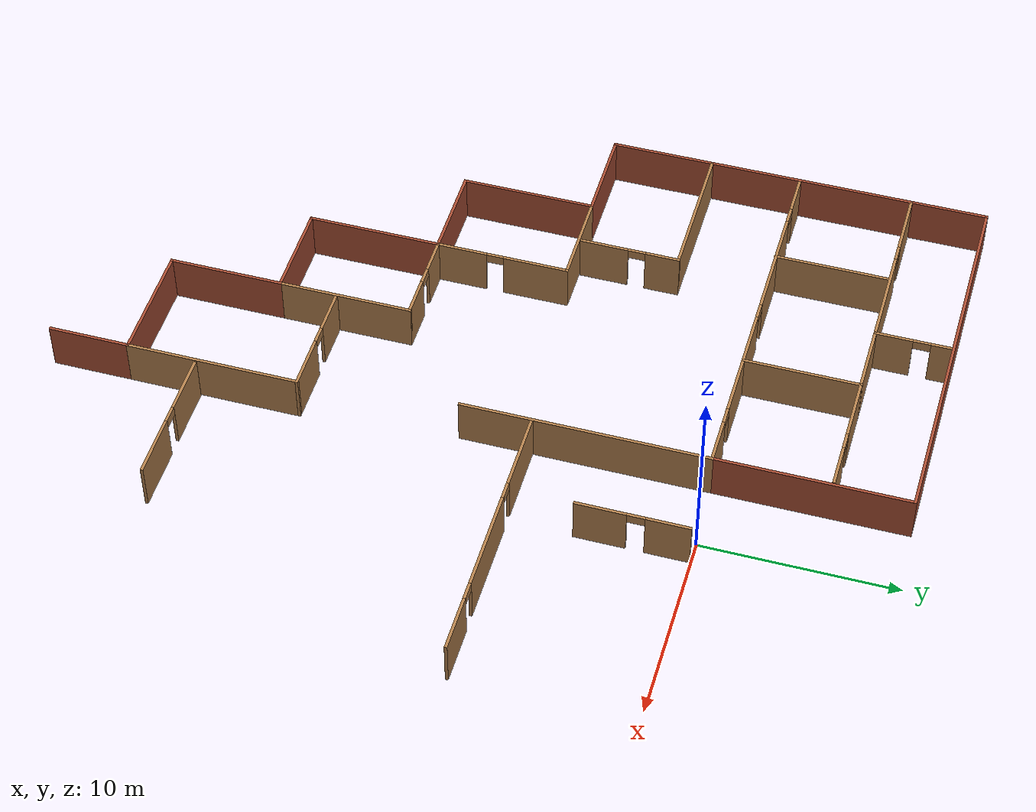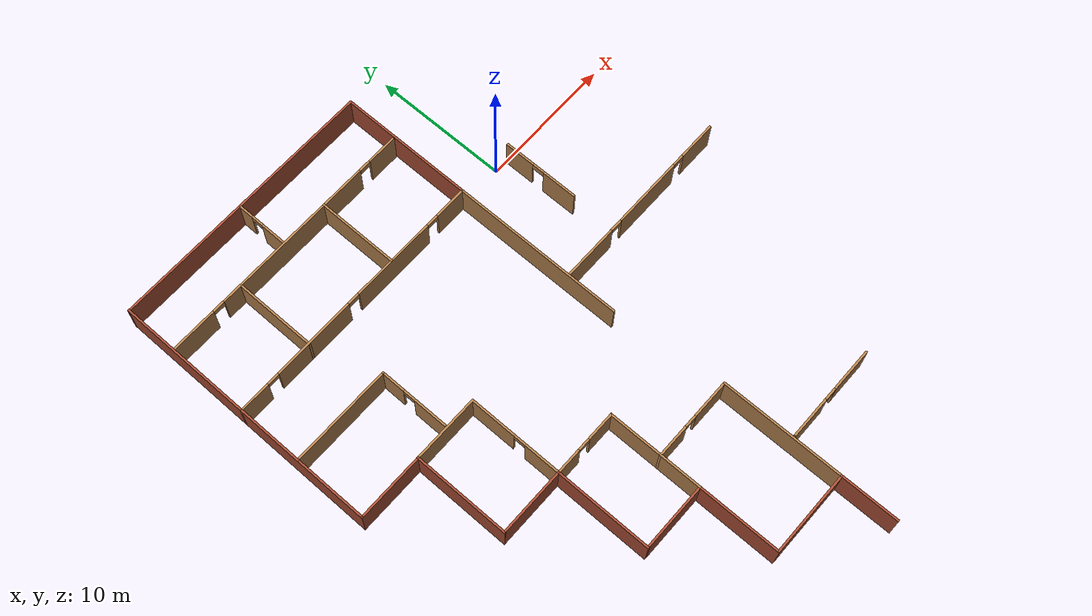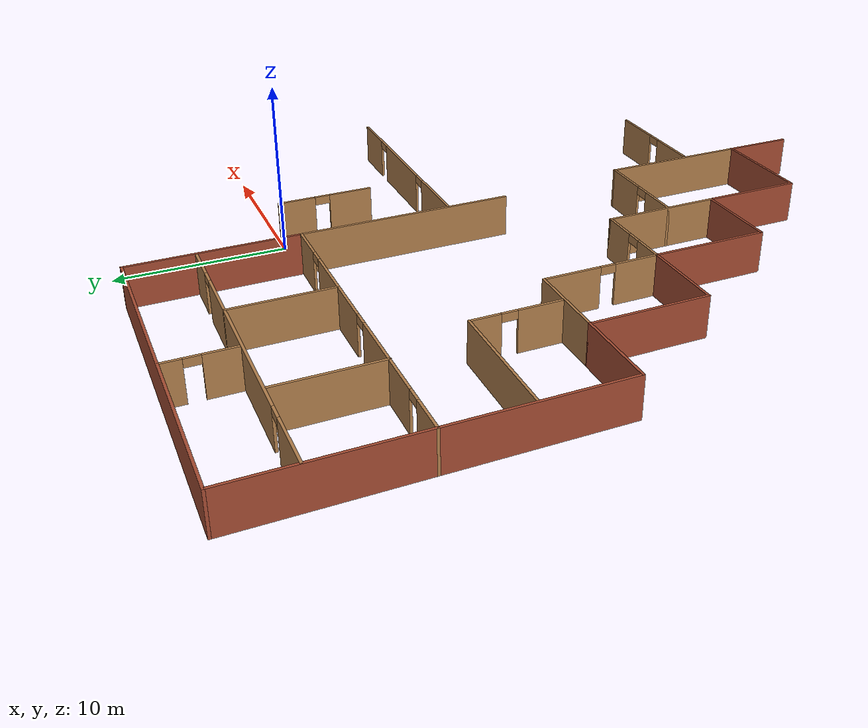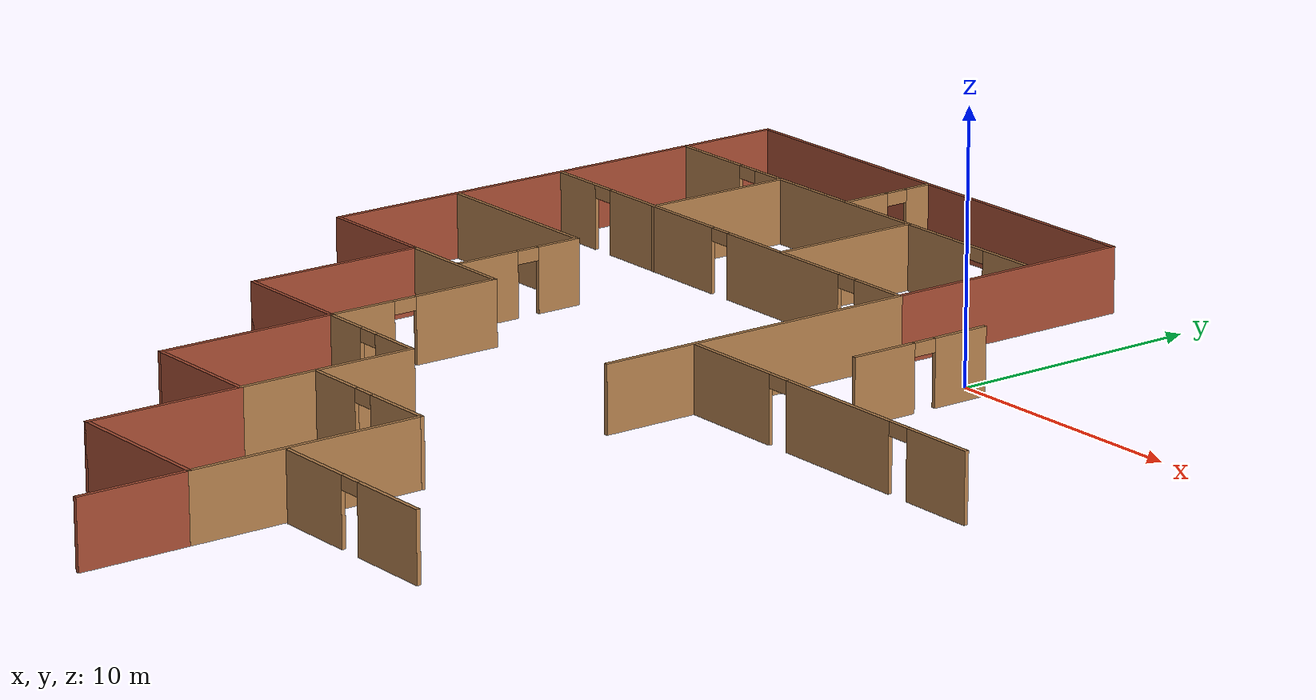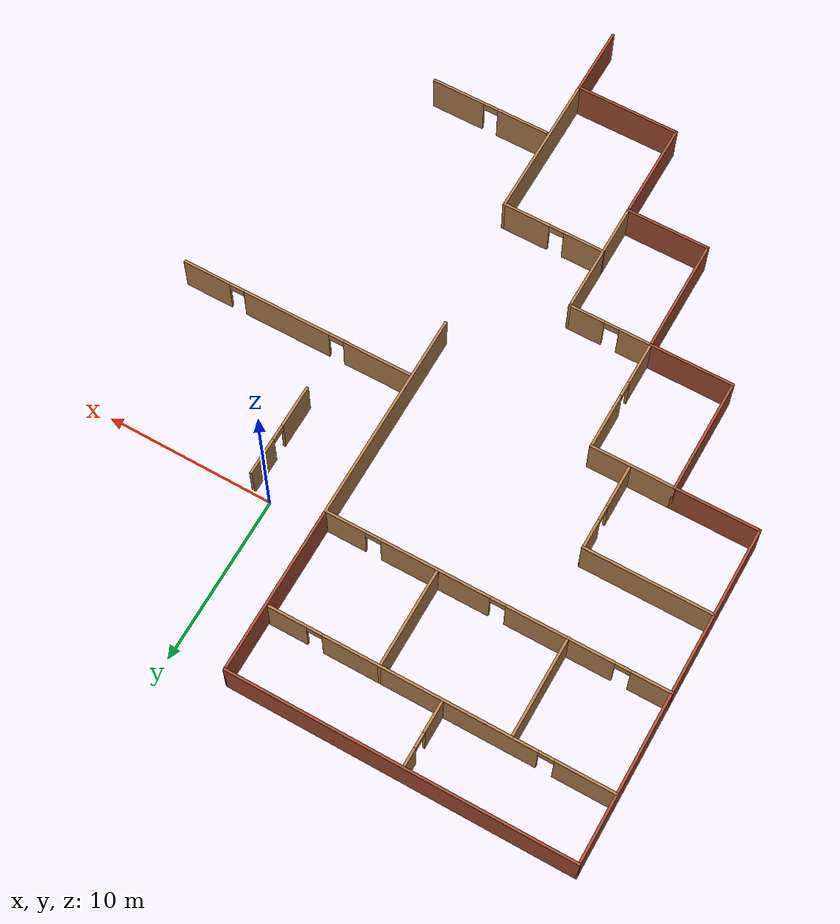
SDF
<sdf version="1.6">
 <model name="My_building">
  <pose>11.044 -12.0312 0 0 -0 0</pose>
  <link name="Wall_112">
   <collision name="Wall_112_Collision">
    <geometry><box><size>12.75 0.15 2.5</size></box></geometry>
    <pose>0 0 1.25 0 -0 0</pose>
   </collision>
   <visual name="Wall_112_Visual">
    <pose>0 0 1.25 0 -0 0</pose>
    <geometry><box><size>12.75 0.15 2.5</size></box></geometry>
    <material>
     <script><uri>file://media/materials/scripts/gazebo.material</uri><name>Gazebo/Wood</name></script>
     <ambient>0.435294 0.796078 0.67451 1</ambient>
    </material>
    <meta><layer>0</layer></meta>
   </visual>
   <pose>-14.442 5.57517 0 0 0 -1.5708</pose>
  </link>
  <link name="Wall_128">
   <pose>-7.38373 2.92047 0 0 -0 0</pose>
   <visual name="Wall_128_Visual_0">
    <pose>-5.00941 0 1.25 0 -0 0</pose>
    <geometry><box><size>4.23118 0.15 2.5</size></box></geometry>
    <material>
     <script><uri>file://media/materials/scripts/gazebo.material</uri><name>Gazebo/Wood</name></script>
     <ambient>0.435294 0.796078 0.67451 1</ambient>
    </material>
    <meta><layer>0</layer></meta>
   </visual>
   <collision name="Wall_128_Collision_0">
    <geometry><box><size>4.23118 0.15 2.5</size></box></geometry>
    <pose>-5.00941 0 1.25 0 -0 0</pose>
   </collision>
   <visual name="Wall_128_Visual_1">
    <pose>0.666855 0 1.25 0 -0 0</pose>
    <geometry><box><size>5.32134 0.15 2.5</size></box></geometry>
    <material>
     <script><uri>file://media/materials/scripts/gazebo.material</uri><name>Gazebo/Wood</name></script>
     <ambient>0.435294 0.796078 0.67451 1</ambient>
    </material>
    <meta><layer>0</layer></meta>
   </visual>
   <collision name="Wall_128_Collision_1">
    <geometry><box><size>5.32134 0.15 2.5</size></box></geometry>
    <pose>0.666855 0 1.25 0 -0 0</pose>
   </collision>
   <visual name="Wall_128_Visual_2">
    <pose>5.67626 0 1.25 0 -0 0</pose>
    <geometry><box><size>2.89748 0.15 2.5</size></box></geometry>
    <material>
     <script><uri>file://media/materials/scripts/gazebo.material</uri><name>Gazebo/Wood</name></script>
     <ambient>0.435294 0.796078 0.67451 1</ambient>
    </material>
    <meta><layer>0</layer></meta>
   </visual>
   <collision name="Wall_128_Collision_2">
    <geometry><box><size>2.89748 0.15 2.5</size></box></geometry>
    <pose>5.67626 0 1.25 0 -0 0</pose>
   </collision>
   <visual name="Wall_128_Visual_3">
    <pose>-2.44382 0 2.25 0 -0 0</pose>
    <geometry><box><size>0.9 0.15 0.5</size></box></geometry>
    <material>
     <script><uri>file://media/materials/scripts/gazebo.material</uri><name>Gazebo/Wood</name></script>
     <ambient>0.435294 0.796078 0.67451 1</ambient>
    </material>
    <meta><layer>0</layer></meta>
   </visual>
   <collision name="Wall_128_Collision_3">
    <geometry><box><size>0.9 0.15 0.5</size></box></geometry>
    <pose>-2.44382 0 2.25 0 -0 0</pose>
   </collision>
   <visual name="Wall_128_Visual_4">
    <pose>3.77752 0 2.25 0 -0 0</pose>
    <geometry><box><size>0.9 0.15 0.5</size></box></geometry>
    <material>
     <script><uri>file://media/materials/scripts/gazebo.material</uri><name>Gazebo/Wood</name></script>
     <ambient>0.435294 0.796078 0.67451 1</ambient>
    </material>
    <meta><layer>0</layer></meta>
   </visual>
   <collision name="Wall_128_Collision_4">
    <geometry><box><size>0.9 0.15 0.5</size></box></geometry>
    <pose>3.77752 0 2.25 0 -0 0</pose>
   </collision>
  </link>
  <link name="Wall_134">
   <pose>-9.99647 9.10326 0 0 0 -1.5708</pose>
   <visual name="Wall_134_Visual_0">
    <pose>-1.74931 0 1.25 0 -0 0</pose>
    <geometry><box><size>2.25138 0.15 2.5</size></box></geometry>
    <material>
     <script><uri>file://media/materials/scripts/gazebo.material</uri><name>Gazebo/Wood</name></script>
     <ambient>0.435294 0.796078 0.67451 1</ambient>
    </material>
    <meta><layer>0</layer></meta>
   </visual>
   <collision name="Wall_134_Collision_0">
    <geometry><box><size>2.25138 0.15 2.5</size></box></geometry>
    <pose>-1.74931 0 1.25 0 -0 0</pose>
   </collision>
   <visual name="Wall_134_Visual_1">
    <pose>1.57569 0 1.25 0 -0 0</pose>
    <geometry><box><size>2.59862 0.15 2.5</size></box></geometry>
    <material>
     <script><uri>file://media/materials/scripts/gazebo.material</uri><name>Gazebo/Wood</name></script>
     <ambient>0.435294 0.796078 0.67451 1</ambient>
    </material>
    <meta><layer>0</layer></meta>
   </visual>
   <collision name="Wall_134_Collision_1">
    <geometry><box><size>2.59862 0.15 2.5</size></box></geometry>
    <pose>1.57569 0 1.25 0 -0 0</pose>
   </collision>
   <visual name="Wall_134_Visual_2">
    <pose>-0.17362 0 2.25 0 -0 0</pose>
    <geometry><box><size>0.9 0.15 0.5</size></box></geometry>
    <material>
     <script><uri>file://media/materials/scripts/gazebo.material</uri><name>Gazebo/Wood</name></script>
     <ambient>0.435294 0.796078 0.67451 1</ambient>
    </material>
    <meta><layer>0</layer></meta>
   </visual>
   <collision name="Wall_134_Collision_2">
    <geometry><box><size>0.9 0.15 0.5</size></box></geometry>
    <pose>-0.17362 0 2.25 0 -0 0</pose>
   </collision>
  </link>
  <link name="Wall_137">
   <collision name="Wall_137_Collision">
    <geometry><box><size>5 0.15 2.5</size></box></geometry>
    <pose>0 0 1.25 0 -0 0</pose>
   </collision>
   <visual name="Wall_137_Visual">
    <pose>0 0 1.25 0 -0 0</pose>
    <geometry><box><size>5 0.15 2.5</size></box></geometry>
    <material>
     <script><uri>file://media/materials/scripts/gazebo.material</uri><name>Gazebo/Wood</name></script>
     <ambient>1 1 0 1</ambient>
    </material>
    <meta><layer>0</layer></meta>
   </visual>
   <pose>-27.017 1.87517 0 0 -0 0</pose>
  </link>
  <link name="Wall_139">
   <pose>-24.592 -1.54983 0 0 0 -1.5708</pose>
   <visual name="Wall_139_Visual_0">
    <pose>-1.78358 0 1.25 0 -0 0</pose>
    <geometry><box><size>3.43283 0.15 2.5</size></box></geometry>
    <material>
     <script><uri>file://media/materials/scripts/gazebo.material</uri><name>Gazebo/Wood</name></script>
     <ambient>1 1 0 1</ambient>
    </material>
    <meta><layer>0</layer></meta>
   </visual>
   <collision name="Wall_139_Collision_0">
    <geometry><box><size>3.43283 0.15 2.5</size></box></geometry>
    <pose>-1.78358 0 1.25 0 -0 0</pose>
   </collision>
   <visual name="Wall_139_Visual_1">
    <pose>2.16642 0 1.25 0 -0 0</pose>
    <geometry><box><size>2.66717 0.15 2.5</size></box></geometry>
    <material>
     <script><uri>file://media/materials/scripts/gazebo.material</uri><name>Gazebo/Wood</name></script>
     <ambient>1 1 0 1</ambient>
    </material>
    <meta><layer>0</layer></meta>
   </visual>
   <collision name="Wall_139_Collision_1">
    <geometry><box><size>2.66717 0.15 2.5</size></box></geometry>
    <pose>2.16642 0 1.25 0 -0 0</pose>
   </collision>
   <visual name="Wall_139_Visual_2">
    <pose>0.382831 0 2.25 0 -0 0</pose>
    <geometry><box><size>0.9 0.15 0.5</size></box></geometry>
    <material>
     <script><uri>file://media/materials/scripts/gazebo.material</uri><name>Gazebo/Wood</name></script>
     <ambient>1 1 0 1</ambient>
    </material>
    <meta><layer>0</layer></meta>
   </visual>
   <collision name="Wall_139_Collision_2">
    <geometry><box><size>0.9 0.15 0.5</size></box></geometry>
    <pose>0.382831 0 2.25 0 -0 0</pose>
   </collision>
  </link>
  <link name="Wall_143">
   <pose>-22.167 -4.97483 0 0 -0 0</pose>
   <visual name="Wall_143_Visual_0">
    <pose>-1.52696 0 1.25 0 -0 0</pose>
    <geometry><box><size>1.94607 0.15 2.5</size></box></geometry>
    <material>
     <script><uri>file://media/materials/scripts/gazebo.material</uri><name>Gazebo/Wood</name></script>
     <ambient>1 1 0 1</ambient>
    </material>
    <meta><layer>0</layer></meta>
   </visual>
   <collision name="Wall_143_Collision_0">
    <geometry><box><size>1.94607 0.15 2.5</size></box></geometry>
    <pose>-1.52696 0 1.25 0 -0 0</pose>
   </collision>
   <visual name="Wall_143_Visual_1">
    <pose>1.42304 0 1.25 0 -0 0</pose>
    <geometry><box><size>2.15393 0.15 2.5</size></box></geometry>
    <material>
     <script><uri>file://media/materials/scripts/gazebo.material</uri><name>Gazebo/Wood</name></script>
     <ambient>1 1 0 1</ambient>
    </material>
    <meta><layer>0</layer></meta>
   </visual>
   <collision name="Wall_143_Collision_1">
    <geometry><box><size>2.15393 0.15 2.5</size></box></geometry>
    <pose>1.42304 0 1.25 0 -0 0</pose>
   </collision>
   <visual name="Wall_143_Visual_2">
    <pose>-0.10393 0 2.25 0 -0 0</pose>
    <geometry><box><size>0.9 0.15 0.5</size></box></geometry>
    <material>
     <script><uri>file://media/materials/scripts/gazebo.material</uri><name>Gazebo/Wood</name></script>
     <ambient>1 1 0 1</ambient>
    </material>
    <meta><layer>0</layer></meta>
   </visual>
   <collision name="Wall_143_Collision_2">
    <geometry><box><size>0.9 0.15 0.5</size></box></geometry>
    <pose>-0.10393 0 2.25 0 -0 0</pose>
   </collision>
  </link>
  <link name="Wall_145">
   <collision name="Wall_145_Collision">
    <geometry><box><size>7 0.15 2.5</size></box></geometry>
    <pose>0 0 1.25 0 -0 0</pose>
   </collision>
   <visual name="Wall_145_Visual">
    <pose>0 0 1.25 0 -0 0</pose>
    <geometry><box><size>7 0.15 2.5</size></box></geometry>
    <material>
     <script><uri>file://media/materials/scripts/gazebo.material</uri><name>Gazebo/Wood</name></script>
     <ambient>1 1 0 1</ambient>
    </material>
    <meta><layer>0</layer></meta>
   </visual>
   <pose>-19.742 -8.39983 0 0 0 -1.5708</pose>
  </link>
  <link name="Wall_151">
   <collision name="Wall_151_Collision">
    <geometry><box><size>5 0.15 2.5</size></box></geometry>
    <pose>0 0 1.25 0 -0 0</pose>
   </collision>
   <visual name="Wall_151_Visual">
    <pose>0 0 1.25 0 -0 0</pose>
    <geometry><box><size>5 0.15 2.5</size></box></geometry>
    <material>
     <script><uri>file://media/materials/scripts/gazebo.material</uri><name>Gazebo/Bricks</name></script>
     <ambient>0.333333 1 1 1</ambient>
    </material>
    <meta><layer>0</layer></meta>
   </visual>
   <pose>-22.167 -11.8248 0 0 -0 0</pose>
  </link>
  <link name="Wall_152">
   <collision name="Wall_152_Collision">
    <geometry><box><size>6 0.15 2.5</size></box></geometry>
    <pose>0 0 1.25 0 -0 0</pose>
   </collision>
   <visual name="Wall_152_Visual">
    <pose>0 0 1.25 0 -0 0</pose>
    <geometry><box><size>6 0.15 2.5</size></box></geometry>
    <material>
     <script><uri>file://media/materials/scripts/gazebo.material</uri><name>Gazebo/Bricks</name></script>
     <ambient>0.333333 1 1 1</ambient>
    </material>
    <meta><layer>0</layer></meta>
   </visual>
   <pose>-19.742 -14.7498 0 0 0 -1.5708</pose>
  </link>
  <link name="Wall_153">
   <collision name="Wall_153_Collision">
    <geometry><box><size>6.25 0.15 2.5</size></box></geometry>
    <pose>0 0 1.25 0 -0 0</pose>
   </collision>
   <visual name="Wall_153_Visual">
    <pose>0 0 1.25 0 -0 0</pose>
    <geometry><box><size>6.25 0.15 2.5</size></box></geometry>
    <material>
     <script><uri>file://media/materials/scripts/gazebo.material</uri><name>Gazebo/Bricks</name></script>
     <ambient>0.333333 1 1 1</ambient>
    </material>
    <meta><layer>0</layer></meta>
   </visual>
   <pose>-16.692 -17.6748 0 0 -0 0</pose>
  </link>
  <link name="Wall_154">
   <collision name="Wall_154_Collision">
    <geometry><box><size>4.25 0.15 2.5</size></box></geometry>
    <pose>0 0 1.25 0 -0 0</pose>
   </collision>
   <visual name="Wall_154_Visual">
    <pose>0 0 1.25 0 -0 0</pose>
    <geometry><box><size>4.25 0.15 2.5</size></box></geometry>
    <material>
     <script><uri>file://media/materials/scripts/gazebo.material</uri><name>Gazebo/Bricks</name></script>
     <ambient>0.333333 1 1 1</ambient>
    </material>
    <meta><layer>0</layer></meta>
   </visual>
   <pose>-13.642 -19.7248 0 0 0 -1.5708</pose>
  </link>
  <link name="Wall_175">
   <collision name="Wall_175_Collision">
    <geometry><box><size>9 0.15 2.5</size></box></geometry>
    <pose>0 0 1.25 0 -0 0</pose>
   </collision>
   <visual name="Wall_175_Visual">
    <pose>0 0 1.25 0 -0 0</pose>
    <geometry><box><size>9 0.15 2.5</size></box></geometry>
    <material>
     <script><uri>file://media/materials/scripts/gazebo.material</uri><name>Gazebo/Wood</name></script>
     <ambient>1 1 0 1</ambient>
    </material>
    <meta><layer>0</layer></meta>
   </visual>
   <pose>-13.642 -13.2498 0 0 -0 1.5708</pose>
  </link>
  <link name="Wall_176">
   <pose>-16.692 -8.82483 0 0 -0 3.14159</pose>
   <visual name="Wall_176_Visual_0">
    <pose>-1.68139 0 1.25 0 -0 0</pose>
    <geometry><box><size>2.88721 0.15 2.5</size></box></geometry>
    <material>
     <script><uri>file://media/materials/scripts/gazebo.material</uri><name>Gazebo/Wood</name></script>
     <ambient>1 1 0 1</ambient>
    </material>
    <meta><layer>0</layer></meta>
   </visual>
   <collision name="Wall_176_Collision_0">
    <geometry><box><size>2.88721 0.15 2.5</size></box></geometry>
    <pose>-1.68139 0 1.25 0 -0 0</pose>
   </collision>
   <visual name="Wall_176_Visual_1">
    <pose>1.89361 0 1.25 0 -0 0</pose>
    <geometry><box><size>2.46279 0.15 2.5</size></box></geometry>
    <material>
     <script><uri>file://media/materials/scripts/gazebo.material</uri><name>Gazebo/Wood</name></script>
     <ambient>1 1 0 1</ambient>
    </material>
    <meta><layer>0</layer></meta>
   </visual>
   <collision name="Wall_176_Collision_1">
    <geometry><box><size>2.46279 0.15 2.5</size></box></geometry>
    <pose>1.89361 0 1.25 0 -0 0</pose>
   </collision>
   <visual name="Wall_176_Visual_2">
    <pose>0.212214 0 2.25 0 -0 0</pose>
    <geometry><box><size>0.9 0.15 0.5</size></box></geometry>
    <material>
     <script><uri>file://media/materials/scripts/gazebo.material</uri><name>Gazebo/Wood</name></script>
     <ambient>1 1 0 1</ambient>
    </material>
    <meta><layer>0</layer></meta>
   </visual>
   <collision name="Wall_176_Collision_2">
    <geometry><box><size>0.9 0.15 0.5</size></box></geometry>
    <pose>0.212214 0 2.25 0 -0 0</pose>
   </collision>
  </link>
  <link name="Wall_185">
   <pose>-9.87539 -14.0695 0 0 -0 0</pose>
   <visual name="Wall_185_Visual_0">
    <pose>-2.06665 0 1.25 0 -0 0</pose>
    <geometry><box><size>3.1167 0.15 2.5</size></box></geometry>
    <material>
     <script><uri>file://media/materials/scripts/gazebo.material</uri><name>Gazebo/Wood</name></script>
     <ambient>0.760784 0.662745 0.627451 1</ambient>
    </material>
    <meta><layer>0</layer></meta>
   </visual>
   <collision name="Wall_185_Collision_0">
    <geometry><box><size>3.1167 0.15 2.5</size></box></geometry>
    <pose>-2.06665 0 1.25 0 -0 0</pose>
   </collision>
   <visual name="Wall_185_Visual_1">
    <pose>2.00835 0 1.25 0 -0 0</pose>
    <geometry><box><size>3.2333 0.15 2.5</size></box></geometry>
    <material>
     <script><uri>file://media/materials/scripts/gazebo.material</uri><name>Gazebo/Wood</name></script>
     <ambient>0.760784 0.662745 0.627451 1</ambient>
    </material>
    <meta><layer>0</layer></meta>
   </visual>
   <collision name="Wall_185_Collision_1">
    <geometry><box><size>3.2333 0.15 2.5</size></box></geometry>
    <pose>2.00835 0 1.25 0 -0 0</pose>
   </collision>
   <visual name="Wall_185_Visual_2">
    <pose>-0.058299 0 2.25 0 -0 0</pose>
    <geometry><box><size>0.9 0.15 0.5</size></box></geometry>
    <material>
     <script><uri>file://media/materials/scripts/gazebo.material</uri><name>Gazebo/Wood</name></script>
     <ambient>0.760784 0.662745 0.627451 1</ambient>
    </material>
    <meta><layer>0</layer></meta>
   </visual>
   <collision name="Wall_185_Collision_2">
    <geometry><box><size>0.9 0.15 0.5</size></box></geometry>
    <pose>-0.058299 0 2.25 0 -0 0</pose>
   </collision>
  </link>
  <link name="Wall_209">
   <pose>-24.367 11.8752 0 0 -0 3.14159</pose>
   <visual name="Wall_209_Visual_0">
    <pose>-8.7635 0 1.25 0 -0 0</pose>
    <geometry><box><size>2.47301 0.15 2.5</size></box></geometry>
    <material>
     <script><uri>file://media/materials/scripts/gazebo.material</uri><name>Gazebo/Wood</name></script>
     <ambient>0.996078 0.47451 0.0196078 1</ambient>
    </material>
    <meta><layer>0</layer></meta>
   </visual>
   <collision name="Wall_209_Collision_0">
    <geometry><box><size>2.47301 0.15 2.5</size></box></geometry>
    <pose>-8.7635 0 1.25 0 -0 0</pose>
   </collision>
   <visual name="Wall_209_Visual_1">
    <pose>-3.46084 0 1.25 0 -0 0</pose>
    <geometry><box><size>6.33231 0.15 2.5</size></box></geometry>
    <material>
     <script><uri>file://media/materials/scripts/gazebo.material</uri><name>Gazebo/Wood</name></script>
     <ambient>0.996078 0.47451 0.0196078 1</ambient>
    </material>
    <meta><layer>0</layer></meta>
   </visual>
   <collision name="Wall_209_Collision_1">
    <geometry><box><size>6.33231 0.15 2.5</size></box></geometry>
    <pose>-3.46084 0 1.25 0 -0 0</pose>
   </collision>
   <visual name="Wall_209_Visual_2">
    <pose>3.69371 0 1.25 0 -0 0</pose>
    <geometry><box><size>6.17677 0.15 2.5</size></box></geometry>
    <material>
     <script><uri>file://media/materials/scripts/gazebo.material</uri><name>Gazebo/Wood</name></script>
     <ambient>0.996078 0.47451 0.0196078 1</ambient>
    </material>
    <meta><layer>0</layer></meta>
   </visual>
   <collision name="Wall_209_Collision_2">
    <geometry><box><size>6.17677 0.15 2.5</size></box></geometry>
    <pose>3.69371 0 1.25 0 -0 0</pose>
   </collision>
   <visual name="Wall_209_Visual_3">
    <pose>8.84105 0 1.25 0 -0 0</pose>
    <geometry><box><size>2.31791 0.15 2.5</size></box></geometry>
    <material>
     <script><uri>file://media/materials/scripts/gazebo.material</uri><name>Gazebo/Wood</name></script>
     <ambient>0.996078 0.47451 0.0196078 1</ambient>
    </material>
    <meta><layer>0</layer></meta>
   </visual>
   <collision name="Wall_209_Collision_3">
    <geometry><box><size>2.31791 0.15 2.5</size></box></geometry>
    <pose>8.84105 0 1.25 0 -0 0</pose>
   </collision>
   <visual name="Wall_209_Visual_4">
    <pose>-7.07699 0 2.25 0 -0 0</pose>
    <geometry><box><size>0.9 0.15 0.5</size></box></geometry>
    <material>
     <script><uri>file://media/materials/scripts/gazebo.material</uri><name>Gazebo/Wood</name></script>
     <ambient>0.996078 0.47451 0.0196078 1</ambient>
    </material>
    <meta><layer>0</layer></meta>
   </visual>
   <collision name="Wall_209_Collision_4">
    <geometry><box><size>0.9 0.15 0.5</size></box></geometry>
    <pose>-7.07699 0 2.25 0 -0 0</pose>
   </collision>
   <visual name="Wall_209_Visual_5">
    <pose>0.155318 0 2.25 0 -0 0</pose>
    <geometry><box><size>0.9 0.15 0.5</size></box></geometry>
    <material>
     <script><uri>file://media/materials/scripts/gazebo.material</uri><name>Gazebo/Wood</name></script>
     <ambient>0.996078 0.47451 0.0196078 1</ambient>
    </material>
    <meta><layer>0</layer></meta>
   </visual>
   <collision name="Wall_209_Collision_5">
    <geometry><box><size>0.9 0.15 0.5</size></box></geometry>
    <pose>0.155318 0 2.25 0 -0 0</pose>
   </collision>
   <visual name="Wall_209_Visual_6">
    <pose>7.23209 0 2.25 0 -0 0</pose>
    <geometry><box><size>0.9 0.15 0.5</size></box></geometry>
    <material>
     <script><uri>file://media/materials/scripts/gazebo.material</uri><name>Gazebo/Wood</name></script>
     <ambient>0.996078 0.47451 0.0196078 1</ambient>
    </material>
    <meta><layer>0</layer></meta>
   </visual>
   <collision name="Wall_209_Collision_6">
    <geometry><box><size>0.9 0.15 0.5</size></box></geometry>
    <pose>7.23209 0 2.25 0 -0 0</pose>
   </collision>
  </link>
  <link name="Wall_211">
   <pose>-24.4385 17.778 0 0 -0 0</pose>
   <visual name="Wall_211_Visual_0">
    <pose>-8.15955 0 1.25 0 -0 0</pose>
    <geometry><box><size>3.43091 0.15 2.5</size></box></geometry>
    <material>
     <script><uri>file://media/materials/scripts/gazebo.material</uri><name>Gazebo/Wood</name></script>
     <ambient>0.996078 0.47451 0.0196078 1</ambient>
    </material>
    <meta><layer>0</layer></meta>
   </visual>
   <collision name="Wall_211_Collision_0">
    <geometry><box><size>3.43091 0.15 2.5</size></box></geometry>
    <pose>-8.15955 0 1.25 0 -0 0</pose>
   </collision>
   <visual name="Wall_211_Visual_1">
    <pose>0.577197 0 1.25 0 -0 0</pose>
    <geometry><box><size>12.2426 0.15 2.5</size></box></geometry>
    <material>
     <script><uri>file://media/materials/scripts/gazebo.material</uri><name>Gazebo/Wood</name></script>
     <ambient>0.996078 0.47451 0.0196078 1</ambient>
    </material>
    <meta><layer>0</layer></meta>
   </visual>
   <collision name="Wall_211_Collision_1">
    <geometry><box><size>12.2426 0.15 2.5</size></box></geometry>
    <pose>0.577197 0 1.25 0 -0 0</pose>
   </collision>
   <visual name="Wall_211_Visual_2">
    <pose>8.73674 0 1.25 0 -0 0</pose>
    <geometry><box><size>2.27651 0.15 2.5</size></box></geometry>
    <material>
     <script><uri>file://media/materials/scripts/gazebo.material</uri><name>Gazebo/Wood</name></script>
     <ambient>0.996078 0.47451 0.0196078 1</ambient>
    </material>
    <meta><layer>0</layer></meta>
   </visual>
   <collision name="Wall_211_Collision_2">
    <geometry><box><size>2.27651 0.15 2.5</size></box></geometry>
    <pose>8.73674 0 1.25 0 -0 0</pose>
   </collision>
   <visual name="Wall_211_Visual_3">
    <pose>-5.99409 0 2.25 0 -0 0</pose>
    <geometry><box><size>0.9 0.15 0.5</size></box></geometry>
    <material>
     <script><uri>file://media/materials/scripts/gazebo.material</uri><name>Gazebo/Wood</name></script>
     <ambient>0.996078 0.47451 0.0196078 1</ambient>
    </material>
    <meta><layer>0</layer></meta>
   </visual>
   <collision name="Wall_211_Collision_3">
    <geometry><box><size>0.9 0.15 0.5</size></box></geometry>
    <pose>-5.99409 0 2.25 0 -0 0</pose>
   </collision>
   <visual name="Wall_211_Visual_4">
    <pose>7.14849 0 2.25 0 -0 0</pose>
    <geometry><box><size>0.9 0.15 0.5</size></box></geometry>
    <material>
     <script><uri>file://media/materials/scripts/gazebo.material</uri><name>Gazebo/Wood</name></script>
     <ambient>0.996078 0.47451 0.0196078 1</ambient>
    </material>
    <meta><layer>0</layer></meta>
   </visual>
   <collision name="Wall_211_Collision_4">
    <geometry><box><size>0.9 0.15 0.5</size></box></geometry>
    <pose>7.14849 0 2.25 0 -0 0</pose>
   </collision>
  </link>
  <link name="Wall_221">
   <collision name="Wall_221_Collision">
    <geometry><box><size>6 0.15 2.5</size></box></geometry>
    <pose>0 0 1.25 0 -0 0</pose>
   </collision>
   <visual name="Wall_221_Visual">
    <pose>0 0 1.25 0 -0 0</pose>
    <geometry><box><size>6 0.15 2.5</size></box></geometry>
    <material>
     <script><uri>file://media/materials/scripts/gazebo.material</uri><name>Gazebo/Wood</name></script>
     <ambient>0.996078 0.47451 0.0196078 1</ambient>
    </material>
    <meta><layer>0</layer></meta>
   </visual>
   <pose>-28.499 14.7819 0 0 0 -1.5708</pose>
  </link>
  <link name="Wall_223">
   <collision name="Wall_223_Collision">
    <geometry><box><size>6 0.15 2.5</size></box></geometry>
    <pose>0 0 1.25 0 -0 0</pose>
   </collision>
   <visual name="Wall_223_Visual">
    <pose>0 0 1.25 0 -0 0</pose>
    <geometry><box><size>6 0.15 2.5</size></box></geometry>
    <material>
     <script><uri>file://media/materials/scripts/gazebo.material</uri><name>Gazebo/Wood</name></script>
     <ambient>0.996078 0.47451 0.0196078 1</ambient>
    </material>
    <meta><layer>0</layer></meta>
   </visual>
   <pose>-21.0484 14.8536 0 0 0 -1.5708</pose>
  </link>
  <link name="Wall_225">
   <pose>-24.6467 19.7138 0 0 -0 1.5708</pose>
   <visual name="Wall_225_Visual_0">
    <pose>-1.01007 0 1.25 0 -0 0</pose>
    <geometry><box><size>1.97986 0.15 2.5</size></box></geometry>
    <material>
     <script><uri>file://media/materials/scripts/gazebo.material</uri><name>Gazebo/Wood</name></script>
     <ambient>0.996078 0.47451 0.0196078 1</ambient>
    </material>
    <meta><layer>0</layer></meta>
   </visual>
   <collision name="Wall_225_Collision_0">
    <geometry><box><size>1.97986 0.15 2.5</size></box></geometry>
    <pose>-1.01007 0 1.25 0 -0 0</pose>
   </collision>
   <visual name="Wall_225_Visual_1">
    <pose>1.43993 0 1.25 0 -0 0</pose>
    <geometry><box><size>1.12014 0.15 2.5</size></box></geometry>
    <material>
     <script><uri>file://media/materials/scripts/gazebo.material</uri><name>Gazebo/Wood</name></script>
     <ambient>0.996078 0.47451 0.0196078 1</ambient>
    </material>
    <meta><layer>0</layer></meta>
   </visual>
   <collision name="Wall_225_Collision_1">
    <geometry><box><size>1.12014 0.15 2.5</size></box></geometry>
    <pose>1.43993 0 1.25 0 -0 0</pose>
   </collision>
   <visual name="Wall_225_Visual_2">
    <pose>0.429862 0 2.25 0 -0 0</pose>
    <geometry><box><size>0.9 0.15 0.5</size></box></geometry>
    <material>
     <script><uri>file://media/materials/scripts/gazebo.material</uri><name>Gazebo/Wood</name></script>
     <ambient>0.996078 0.47451 0.0196078 1</ambient>
    </material>
    <meta><layer>0</layer></meta>
   </visual>
   <collision name="Wall_225_Collision_2">
    <geometry><box><size>0.9 0.15 0.5</size></box></geometry>
    <pose>0.429862 0 2.25 0 -0 0</pose>
   </collision>
  </link>
  <link name="Wall_229">
   <collision name="Wall_229_Collision">
    <geometry><box><size>7.5 0.15 2.5</size></box></geometry>
    <pose>0 0 1.25 0 -0 0</pose>
   </collision>
   <visual name="Wall_229_Visual">
    <pose>0 0 1.25 0 -0 0</pose>
    <geometry><box><size>7.5 0.15 2.5</size></box></geometry>
    <material>
     <script><uri>file://media/materials/scripts/gazebo.material</uri><name>Gazebo/Wood</name></script>
     <ambient>1 1 0 1</ambient>
    </material>
    <meta><layer>0</layer></meta>
   </visual>
   <pose>-30.5536 7.14467 0 0 -0 0</pose>
  </link>
  <link name="Wall_230">
   <pose>-26.8786 4.59467 0 0 0 -1.5708</pose>
   <visual name="Wall_230_Visual_0">
    <pose>-1.71919 0 1.25 0 -0 0</pose>
    <geometry><box><size>1.81162 0.15 2.5</size></box></geometry>
    <material>
     <script><uri>file://media/materials/scripts/gazebo.material</uri><name>Gazebo/Wood</name></script>
     <ambient>1 1 0 1</ambient>
    </material>
    <meta><layer>0</layer></meta>
   </visual>
   <collision name="Wall_230_Collision_0">
    <geometry><box><size>1.81162 0.15 2.5</size></box></geometry>
    <pose>-1.71919 0 1.25 0 -0 0</pose>
   </collision>
   <visual name="Wall_230_Visual_1">
    <pose>1.35581 0 1.25 0 -0 0</pose>
    <geometry><box><size>2.53838 0.15 2.5</size></box></geometry>
    <material>
     <script><uri>file://media/materials/scripts/gazebo.material</uri><name>Gazebo/Wood</name></script>
     <ambient>1 1 0 1</ambient>
    </material>
    <meta><layer>0</layer></meta>
   </visual>
   <collision name="Wall_230_Collision_1">
    <geometry><box><size>2.53838 0.15 2.5</size></box></geometry>
    <pose>1.35581 0 1.25 0 -0 0</pose>
   </collision>
   <visual name="Wall_230_Visual_2">
    <pose>-0.363384 0 2.25 0 -0 0</pose>
    <geometry><box><size>0.9 0.15 0.5</size></box></geometry>
    <material>
     <script><uri>file://media/materials/scripts/gazebo.material</uri><name>Gazebo/Wood</name></script>
     <ambient>1 1 0 1</ambient>
    </material>
    <meta><layer>0</layer></meta>
   </visual>
   <collision name="Wall_230_Collision_2">
    <geometry><box><size>0.9 0.15 0.5</size></box></geometry>
    <pose>-0.363384 0 2.25 0 -0 0</pose>
   </collision>
  </link>
  <link name="Wall_67">
   <collision name="Wall_67_Collision">
    <geometry><box><size>20 0.15 2.5</size></box></geometry>
    <pose>0 0 1.25 0 -0 0</pose>
   </collision>
   <visual name="Wall_67_Visual">
    <pose>0 0 1.25 0 -0 0</pose>
    <geometry><box><size>20 0.15 2.5</size></box></geometry>
    <material>
     <script><uri>file://media/materials/scripts/gazebo.material</uri><name>Gazebo/Bricks</name></script>
     <ambient>0.333333 1 1 1</ambient>
    </material>
    <meta><layer>0</layer></meta>
   </visual>
   <pose>-24.367 21.7252 0 0 -0 0</pose>
  </link>
  <link name="Wall_72">
   <collision name="Wall_72_Collision">
    <geometry><box><size>10 0.15 2.5</size></box></geometry>
    <pose>0 0 1.25 0 -0 0</pose>
   </collision>
   <visual name="Wall_72_Visual">
    <pose>0 0 1.25 0 -0 0</pose>
    <geometry><box><size>10 0.15 2.5</size></box></geometry>
    <material>
     <script><uri>file://media/materials/scripts/gazebo.material</uri><name>Gazebo/Bricks</name></script>
     <ambient>0.333333 1 1 1</ambient>
    </material>
    <meta><layer>0</layer></meta>
   </visual>
   <pose>-14.442 16.8002 0 0 0 -1.5708</pose>
  </link>
  <link name="Wall_84">
   <collision name="Wall_84_Collision">
    <geometry><box><size>20 0.15 2.5</size></box></geometry>
    <pose>0 0 1.25 0 -0 0</pose>
   </collision>
   <visual name="Wall_84_Visual">
    <pose>0 0 1.25 0 -0 0</pose>
    <geometry><box><size>20 0.15 2.5</size></box></geometry>
    <material>
     <script><uri>file://media/materials/scripts/gazebo.material</uri><name>Gazebo/Bricks</name></script>
     <ambient>0.333333 1 1 1</ambient>
    </material>
    <meta><layer>0</layer></meta>
   </visual>
   <pose>-34.292 11.8002 0 0 0 -1.5708</pose>
  </link>
  <link name="Wall_86">
   <collision name="Wall_86_Collision">
    <geometry><box><size>5 0.15 2.5</size></box></geometry>
    <pose>0 0 1.25 0 -0 0</pose>
   </collision>
   <visual name="Wall_86_Visual">
    <pose>0 0 1.25 0 -0 0</pose>
    <geometry><box><size>5 0.15 2.5</size></box></geometry>
    <material>
     <script><uri>file://media/materials/scripts/gazebo.material</uri><name>Gazebo/Bricks</name></script>
     <ambient>0.333333 1 1 1</ambient>
    </material>
    <meta><layer>0</layer></meta>
   </visual>
   <pose>-31.867 1.87517 0 0 -0 0</pose>
  </link>
  <link name="Wall_88">
   <collision name="Wall_88_Collision">
    <geometry><box><size>7 0.15 2.5</size></box></geometry>
    <pose>0 0 1.25 0 -0 0</pose>
   </collision>
   <visual name="Wall_88_Visual">
    <pose>0 0 1.25 0 -0 0</pose>
    <geometry><box><size>7 0.15 2.5</size></box></geometry>
    <material>
     <script><uri>file://media/materials/scripts/gazebo.material</uri><name>Gazebo/Bricks</name></script>
     <ambient>0.333333 1 1 1</ambient>
    </material>
    <meta><layer>0</layer></meta>
   </visual>
   <pose>-29.442 -1.54983 0 0 0 -1.5708</pose>
  </link>
  <link name="Wall_91">
   <collision name="Wall_91_Collision">
    <geometry><box><size>5 0.15 2.5</size></box></geometry>
    <pose>0 0 1.25 0 -0 0</pose>
   </collision>
   <visual name="Wall_91_Visual">
    <pose>0 0 1.25 0 -0 0</pose>
    <geometry><box><size>5 0.15 2.5</size></box></geometry>
    <material>
     <script><uri>file://media/materials/scripts/gazebo.material</uri><name>Gazebo/Bricks</name></script>
     <ambient>0.333333 1 1 1</ambient>
    </material>
    <meta><layer>0</layer></meta>
   </visual>
   <pose>-27.017 -4.97483 0 0 -0 0</pose>
  </link>
  <link name="Wall_93">
   <collision name="Wall_93_Collision">
    <geometry><box><size>7 0.15 2.5</size></box></geometry>
    <pose>0 0 1.25 0 -0 0</pose>
   </collision>
   <visual name="Wall_93_Visual">
    <pose>0 0 1.25 0 -0 0</pose>
    <geometry><box><size>7 0.15 2.5</size></box></geometry>
    <material>
     <script><uri>file://media/materials/scripts/gazebo.material</uri><name>Gazebo/Bricks</name></script>
     <ambient>0.333333 1 1 1</ambient>
    </material>
    <meta><layer>0</layer></meta>
   </visual>
   <pose>-24.592 -8.39983 0 0 0 -1.5708</pose>
  </link>
  <static>1</static>
 </model>
</sdf>
